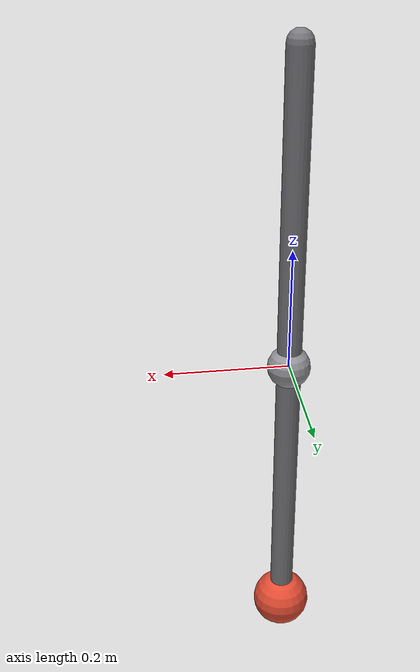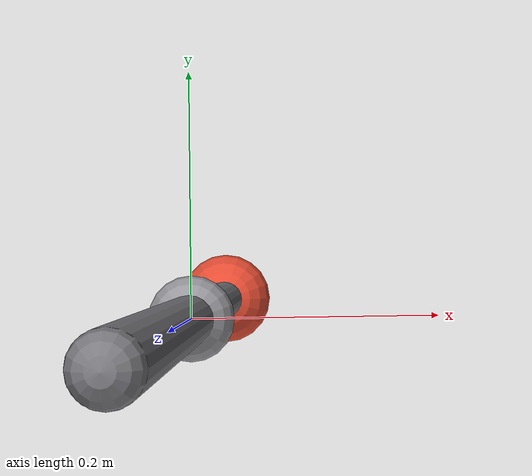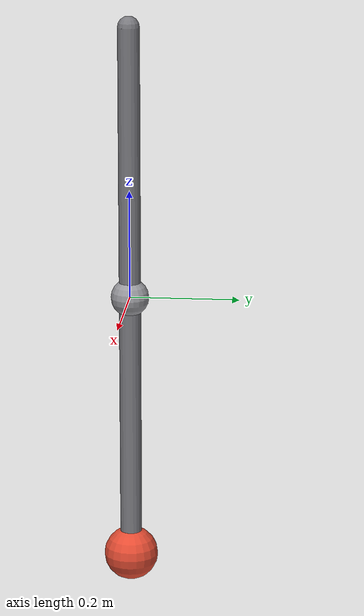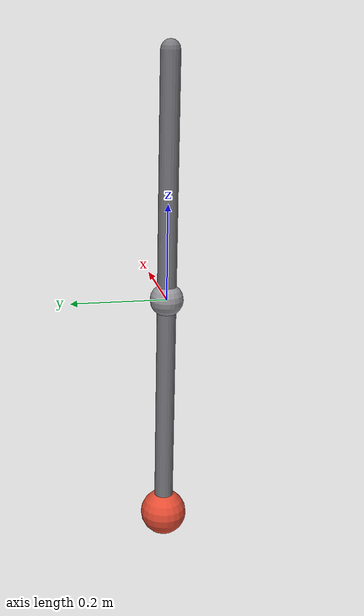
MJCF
<mujoco model="inverse-dynamics">
  <compiler angle="radian"/>
  <option gravity="0 0 -9.81" timestep="0.002"/>

  <default>
    <geom contype="0" conaffinity="0"/>
  </default>

  <worldbody>
    <body name="link1" pos="0 0 0.5">
      <joint name="j1" type="hinge" axis="0 1 0" damping="0.005"/>
      <inertial pos="0 0 -0.25" mass="1.0" diaginertia="0.02 0.02 0.001"/>
      <geom name="rod1" type="capsule" size="0.02"
            fromto="0 0 0  0 0 -0.5" rgba="0.48 0.48 0.50 1"/>
      <geom name="elbow" type="sphere" size="0.035"
            pos="0 0 -0.5" rgba="0.6 0.6 0.62 1"/>

      <body name="link2" pos="0 0 -0.5">
        <joint name="j2" type="hinge" axis="0 1 0" damping="0.005"/>
        <inertial pos="0 0 -0.25" mass="1.0" diaginertia="0.02 0.02 0.001"/>
        <geom name="rod2" type="capsule" size="0.02"
              fromto="0 0 0  0 0 -0.5" rgba="0.48 0.48 0.50 1"/>
        <geom name="tip" type="sphere" size="0.05"
              pos="0 0 -0.5" rgba="0.9 0.3 0.2 1"/>
      </body>
    </body>
  </worldbody>
</mujoco>
